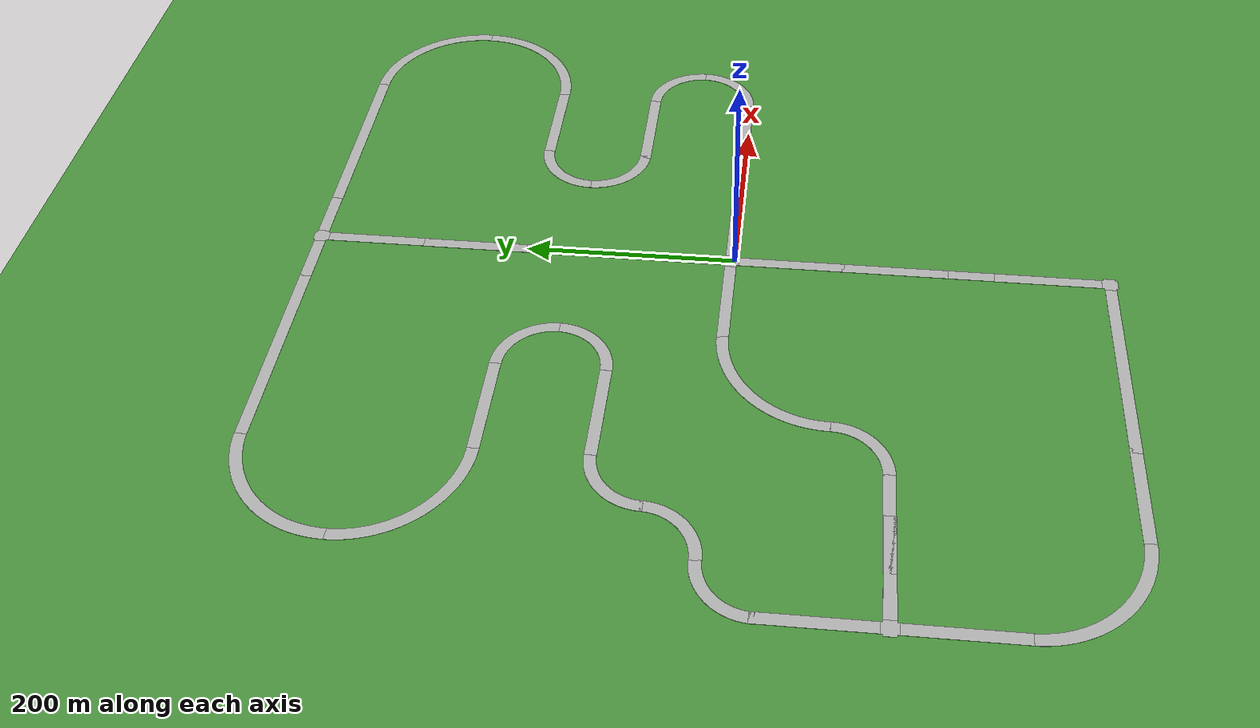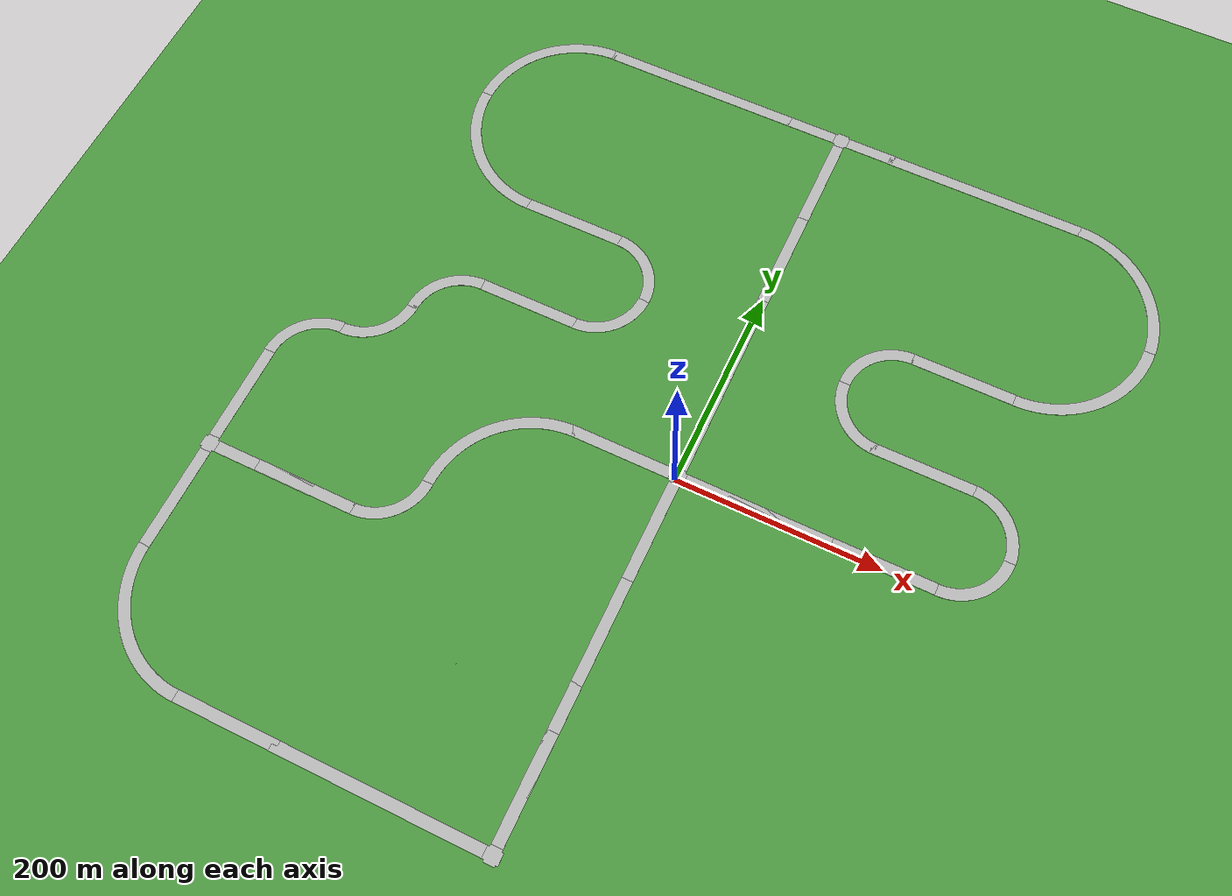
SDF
<sdf version="1.6">
 <world name="default">
  <light name="sun" type="directional">
   <pose>0 0 10 0 -0 0</pose>
   <diffuse>0.8 0.8 0.8 1</diffuse>
   <specular>0.2 0.2 0.2 1</specular>
   <attenuation>
    <range>1000</range>
    <constant>0.9</constant>
    <linear>0.01</linear>
    <quadratic>0.001</quadratic>
   </attenuation>
   <direction>-0.5 0.1 -0.9</direction>
  </light>
  <model name="ground_plane">
   <static>1</static>
   <link name="link">
    <collision name="collision">
     <geometry><plane><normal>0 0 1</normal><size>100 100</size></plane></geometry>
     <surface><friction><ode><mu>100</mu><mu2>50</mu2></ode></friction></surface>
    </collision>
    <visual name="visual">
     <cast_shadows>0</cast_shadows>
     <geometry><plane><normal>0 0 1</normal><size>10000 10000</size></plane></geometry>
     <material>
      <script>
       <uri>model://ds_grass_background/materials/scripts</uri>
       <uri>model://ds_grass_background/materials/textures</uri>
       <name>GrassBackground</name>
      </script>
     </material>
    </visual>
   </link>
  </model>
  <gravity>0 0 -9.8</gravity>
  <magnetic_field>6e-06 2.3e-05 -4.2e-05</magnetic_field>
  <atmosphere type="adiabatic"/>
  <physics name="default_physics" default="0" type="ode">
   <max_step_size>0.001</max_step_size>
   <real_time_factor>1</real_time_factor>
   <real_time_update_rate>1000</real_time_update_rate>
  </physics>
  <scene>
   <ambient>0.4 0.4 0.4 1</ambient>
   <background>0.7 0.7 0.7 1</background>
   <shadows>1</shadows>
   <grid>0</grid>
  </scene>
  <spherical_coordinates>
   <surface_model>EARTH_WGS84</surface_model>
   <latitude_deg>0</latitude_deg>
   <longitude_deg>0</longitude_deg>
   <elevation>0</elevation>
   <heading_deg>0</heading_deg>
  </spherical_coordinates>
  <model name="(DS) Straight Road - 100m_0">
   <static>1</static>
   <link name="link">
    <inertial>
     <mass>1</mass>
     <inertia><ixx>1</ixx><iyy>1</iyy><izz>1</izz><ixy>0</ixy><ixz>0</ixz><iyz>0</iyz></inertia>
    </inertial>
    <collision name="collision">
     <geometry><mesh><uri>model://ds_straight_road_100m/meshes/straight_road_100m.dae</uri></mesh></geometry>
    </collision>
    <visual name="visual">
     <geometry><mesh><uri>model://ds_straight_road_100m/meshes/straight_road_100m.dae</uri></mesh></geometry>
    </visual>
   </link>
   <pose>58.0314 14.1946 0 0 -0 0</pose>
  </model>
  <model name="(DS) Curved Road - 50m_7">
   <static>1</static>
   <link name="link">
    <inertial>
     <mass>1</mass>
     <inertia><ixx>1</ixx><iyy>1</iyy><izz>1</izz><ixy>0</ixy><ixz>0</ixz><iyz>0</iyz></inertia>
    </inertial>
    <collision name="collision">
     <geometry><mesh><uri>model://ds_curved_road_50m/meshes/curved_road_50m.dae</uri></mesh></geometry>
    </collision>
    <visual name="visual">
     <geometry><mesh><uri>model://ds_curved_road_50m/meshes/curved_road_50m.dae</uri></mesh></geometry>
    </visual>
   </link>
   <pose>276.235 81.4244 0 0 -0 1.5707</pose>
  </model>
  <model name="(DS) Curved Road - 50m_8">
   <static>1</static>
   <link name="link">
    <inertial>
     <mass>1</mass>
     <inertia><ixx>1</ixx><iyy>1</iyy><izz>1</izz><ixy>0</ixy><ixz>0</ixz><iyz>0</iyz></inertia>
    </inertial>
    <collision name="collision">
     <geometry><mesh><uri>model://ds_curved_road_50m/meshes/curved_road_50m.dae</uri></mesh></geometry>
    </collision>
    <visual name="visual">
     <geometry><mesh><uri>model://ds_curved_road_50m/meshes/curved_road_50m.dae</uri></mesh></geometry>
    </visual>
   </link>
   <pose>125.492 181.167 0 0 -0 3.14159</pose>
  </model>
  <model name="(DS) Curved Road - 50m_9">
   <static>1</static>
   <link name="link">
    <inertial>
     <mass>1</mass>
     <inertia><ixx>1</ixx><iyy>1</iyy><izz>1</izz><ixy>0</ixy><ixz>0</ixz><iyz>0</iyz></inertia>
    </inertial>
    <collision name="collision">
     <geometry><mesh><uri>model://ds_curved_road_50m/meshes/curved_road_50m.dae</uri></mesh></geometry>
    </collision>
    <visual name="visual">
     <geometry><mesh><uri>model://ds_curved_road_50m/meshes/curved_road_50m.dae</uri></mesh></geometry>
    </visual>
   </link>
   <pose>125.478 125.833 0 0 0 -1.5707</pose>
  </model>
  <model name="(DS) Straight Road - 100m_6">
   <static>1</static>
   <link name="link">
    <inertial>
     <mass>1</mass>
     <inertia><ixx>1</ixx><iyy>1</iyy><izz>1</izz><ixy>0</ixy><ixz>0</ixz><iyz>0</iyz></inertia>
    </inertial>
    <collision name="collision">
     <geometry><mesh><uri>model://ds_straight_road_100m/meshes/straight_road_100m.dae</uri></mesh></geometry>
    </collision>
    <visual name="visual">
     <geometry><mesh><uri>model://ds_straight_road_100m/meshes/straight_road_100m.dae</uri></mesh></geometry>
    </visual>
   </link>
   <pose>202.159 213.384 0 0 -0 0</pose>
  </model>
  <model name="(DS) Curved Road - 100m_8">
   <static>1</static>
   <link name="link">
    <inertial>
     <mass>1</mass>
     <inertia><ixx>1</ixx><iyy>1</iyy><izz>1</izz><ixy>0</ixy><ixz>0</ixz><iyz>0</iyz></inertia>
    </inertial>
    <collision name="collision">
     <geometry><mesh><uri>model://ds_curved_road_100m/meshes/curved_road_100m.dae</uri></mesh></geometry>
    </collision>
    <visual name="visual">
     <geometry><mesh><uri>model://ds_curved_road_100m/meshes/curved_road_100m.dae</uri></mesh></geometry>
    </visual>
   </link>
   <pose>304.777 250.431 0 0 -0 0</pose>
  </model>
  <model name="(DS) Curved Road - 100m_9">
   <static>1</static>
   <link name="link">
    <inertial>
     <mass>1</mass>
     <inertia><ixx>1</ixx><iyy>1</iyy><izz>1</izz><ixy>0</ixy><ixz>0</ixz><iyz>0</iyz></inertia>
    </inertial>
    <collision name="collision">
     <geometry><mesh><uri>model://ds_curved_road_100m/meshes/curved_road_100m.dae</uri></mesh></geometry>
    </collision>
    <visual name="visual">
     <geometry><mesh><uri>model://ds_curved_road_100m/meshes/curved_road_100m.dae</uri></mesh></geometry>
    </visual>
   </link>
   <pose>-305.357 249.91 0 0 0 -1.5707</pose>
  </model>
  <model name="(DS) Curved Road - 100m_10">
   <static>1</static>
   <link name="link">
    <inertial>
     <mass>1</mass>
     <inertia><ixx>1</ixx><iyy>1</iyy><izz>1</izz><ixy>0</ixy><ixz>0</ixz><iyz>0</iyz></inertia>
    </inertial>
    <collision name="collision">
     <geometry><mesh><uri>model://ds_curved_road_100m/meshes/curved_road_100m.dae</uri></mesh></geometry>
    </collision>
    <visual name="visual">
     <geometry><mesh><uri>model://ds_curved_road_100m/meshes/curved_road_100m.dae</uri></mesh></geometry>
    </visual>
   </link>
   <pose>-305.28 355.112 0 0 -0 3.14159</pose>
  </model>
  <model name="(DS) Curved Road - 100m_11">
   <static>1</static>
   <link name="link">
    <inertial>
     <mass>1</mass>
     <inertia><ixx>1</ixx><iyy>1</iyy><izz>1</izz><ixy>0</ixy><ixz>0</ixz><iyz>0</iyz></inertia>
    </inertial>
    <collision name="collision">
     <geometry><mesh><uri>model://ds_curved_road_100m/meshes/curved_road_100m.dae</uri></mesh></geometry>
    </collision>
    <visual name="visual">
     <geometry><mesh><uri>model://ds_curved_road_100m/meshes/curved_road_100m.dae</uri></mesh></geometry>
    </visual>
   </link>
   <pose>304.951 354.734 0 0 -0 1.5707</pose>
  </model>
  <model name="(DS) Straight Road - 200m_9">
   <static>1</static>
   <link name="link">
    <inertial>
     <mass>1</mass>
     <inertia><ixx>1</ixx><iyy>1</iyy><izz>1</izz><ixy>0</ixy><ixz>0</ixz><iyz>0</iyz></inertia>
    </inertial>
    <collision name="collision">
     <geometry><mesh><uri>model://ds_straight_road_200m/meshes/straight_road_200m.dae</uri></mesh></geometry>
    </collision>
    <visual name="visual">
     <geometry><mesh><uri>model://ds_straight_road_200m/meshes/straight_road_200m.dae</uri></mesh></geometry>
    </visual>
   </link>
   <pose>-155.124 412.117 0 0 -0 0</pose>
  </model>
  <model name="(DS) Straight Road - 200m_11">
   <static>1</static>
   <link name="link">
    <inertial>
     <mass>1</mass>
     <inertia><ixx>1</ixx><iyy>1</iyy><izz>1</izz><ixy>0</ixy><ixz>0</ixz><iyz>0</iyz></inertia>
    </inertial>
    <collision name="collision">
     <geometry><mesh><uri>model://ds_straight_road_200m/meshes/straight_road_200m.dae</uri></mesh></geometry>
    </collision>
    <visual name="visual">
     <geometry><mesh><uri>model://ds_straight_road_200m/meshes/straight_road_200m.dae</uri></mesh></geometry>
    </visual>
   </link>
   <pose>152.988 411.982 0 0 -0 0</pose>
  </model>
  <model name="(DS) Curved Road - 50m_11">
   <static>1</static>
   <link name="link">
    <inertial>
     <mass>1</mass>
     <inertia><ixx>1</ixx><iyy>1</iyy><izz>1</izz><ixy>0</ixy><ixz>0</ixz><iyz>0</iyz></inertia>
    </inertial>
    <collision name="collision">
     <geometry><mesh><uri>model://ds_curved_road_50m/meshes/curved_road_50m.dae</uri></mesh></geometry>
    </collision>
    <visual name="visual">
     <geometry><mesh><uri>model://ds_curved_road_50m/meshes/curved_road_50m.dae</uri></mesh></geometry>
    </visual>
   </link>
   <pose>-279.085 81.2955 0 0 -0 3.14159</pose>
  </model>
  <model name="(DS) Curved Road - 50m_13">
   <static>1</static>
   <link name="link">
    <inertial>
     <mass>1</mass>
     <inertia><ixx>1</ixx><iyy>1</iyy><izz>1</izz><ixy>0</ixy><ixz>0</ixz><iyz>0</iyz></inertia>
    </inertial>
    <collision name="collision">
     <geometry><mesh><uri>model://ds_curved_road_50m/meshes/curved_road_50m.dae</uri></mesh></geometry>
    </collision>
    <visual name="visual">
     <geometry><mesh><uri>model://ds_curved_road_50m/meshes/curved_road_50m.dae</uri></mesh></geometry>
    </visual>
   </link>
   <pose>-125.502 180.422 0 0 -0 1.5707</pose>
  </model>
  <model name="(DS) Straight Road - 100m_7">
   <static>1</static>
   <link name="link">
    <inertial>
     <mass>1</mass>
     <inertia><ixx>1</ixx><iyy>1</iyy><izz>1</izz><ixy>0</ixy><ixz>0</ixz><iyz>0</iyz></inertia>
    </inertial>
    <collision name="collision">
     <geometry><mesh><uri>model://ds_straight_road_100m/meshes/straight_road_100m.dae</uri></mesh></geometry>
    </collision>
    <visual name="visual">
     <geometry><mesh><uri>model://ds_straight_road_100m/meshes/straight_road_100m.dae</uri></mesh></geometry>
    </visual>
   </link>
   <pose>10.5041 61.7129 0 0 0 -1.5707</pose>
  </model>
  <model name="(DS) Straight Road - 100m_8">
   <static>1</static>
   <link name="link">
    <inertial>
     <mass>1</mass>
     <inertia><ixx>1</ixx><iyy>1</iyy><izz>1</izz><ixy>0</ixy><ixz>0</ixz><iyz>0</iyz></inertia>
    </inertial>
    <collision name="collision">
     <geometry><mesh><uri>model://ds_straight_road_100m/meshes/straight_road_100m.dae</uri></mesh></geometry>
    </collision>
    <visual name="visual">
     <geometry><mesh><uri>model://ds_straight_road_100m/meshes/straight_road_100m.dae</uri></mesh></geometry>
    </visual>
   </link>
   <pose>-9.38372 344.699 0 0 -0 1.5707</pose>
  </model>
  <model name="(DS) Intersection">
   <static>1</static>
   <link name="link">
    <inertial>
     <mass>1</mass>
     <inertia><ixx>1</ixx><iyy>1</iyy><izz>1</izz><ixy>0</ixy><ixz>0</ixz><iyz>0</iyz></inertia>
    </inertial>
    <collision name="collision">
     <geometry><mesh><uri>model://ds_intersection/meshes/intersection.dae</uri></mesh></geometry>
    </collision>
    <visual name="visual">
     <geometry><mesh><uri>model://ds_intersection/meshes/intersection.dae</uri></mesh></geometry>
    </visual>
   </link>
   <pose>0.482088 4.27016 0 0 -0 0</pose>
  </model>
  <model name="(DS) Straight Road - 100m_8_clone">
   <static>1</static>
   <link name="link">
    <inertial>
     <mass>1</mass>
     <inertia><ixx>1</ixx><iyy>1</iyy><izz>1</izz><ixy>0</ixy><ixz>0</ixz><iyz>0</iyz></inertia>
    </inertial>
    <collision name="collision">
     <geometry><mesh><uri>model://ds_straight_road_100m/meshes/straight_road_100m.dae</uri></mesh></geometry>
    </collision>
    <visual name="visual">
     <geometry><mesh><uri>model://ds_straight_road_100m/meshes/straight_road_100m.dae</uri></mesh></geometry>
    </visual>
   </link>
   <pose>-9.59484 151.108 0 0 -0 1.5707</pose>
  </model>
  <model name="(DS) Straight Road - 100m_8_clone_0">
   <static>1</static>
   <link name="link">
    <inertial>
     <mass>1</mass>
     <inertia><ixx>1</ixx><iyy>1</iyy><izz>1</izz><ixy>0</ixy><ixz>0</ixz><iyz>0</iyz></inertia>
    </inertial>
    <collision name="collision">
     <geometry><mesh><uri>model://ds_straight_road_100m/meshes/straight_road_100m.dae</uri></mesh></geometry>
    </collision>
    <visual name="visual">
     <geometry><mesh><uri>model://ds_straight_road_100m/meshes/straight_road_100m.dae</uri></mesh></geometry>
    </visual>
   </link>
   <pose>-9.52543 251.131 0 0 -0 1.5707</pose>
  </model>
  <model name="(DS) Straight Road - 100m_0_clone">
   <static>1</static>
   <link name="link">
    <inertial>
     <mass>1</mass>
     <inertia><ixx>1</ixx><iyy>1</iyy><izz>1</izz><ixy>0</ixy><ixz>0</ixz><iyz>0</iyz></inertia>
    </inertial>
    <collision name="collision">
     <geometry><mesh><uri>model://ds_straight_road_100m/meshes/straight_road_100m.dae</uri></mesh></geometry>
    </collision>
    <visual name="visual">
     <geometry><mesh><uri>model://ds_straight_road_100m/meshes/straight_road_100m.dae</uri></mesh></geometry>
    </visual>
   </link>
   <pose>99.8887 14.172 0 0 -0 0</pose>
  </model>
  <model name="(DS) Straight Road - 100m_0_clone_0">
   <static>1</static>
   <link name="link">
    <inertial>
     <mass>1</mass>
     <inertia><ixx>1</ixx><iyy>1</iyy><izz>1</izz><ixy>0</ixy><ixz>0</ixz><iyz>0</iyz></inertia>
    </inertial>
    <collision name="collision">
     <geometry><mesh><uri>model://ds_straight_road_100m/meshes/straight_road_100m.dae</uri></mesh></geometry>
    </collision>
    <visual name="visual">
     <geometry><mesh><uri>model://ds_straight_road_100m/meshes/straight_road_100m.dae</uri></mesh></geometry>
    </visual>
   </link>
   <pose>198.926 14.1979 0 0 -0 0</pose>
  </model>
  <model name="frc2016_moat">
   <static>1</static>
   <link name="link">
    <inertial>
     <mass>10</mass>
     <pose>0 0 0.06738 0 -0 0</pose>
     <inertia><ixx>0.312195</ixx><ixy>0</ixy><ixz>0</ixz><iyy>1.35927</iyy><iyz>0</iyz><izz>1.64109</izz></inertia>
    </inertial>
    <visual name="platform">
     <pose>0 0 0.0381 0 -0 0</pose>
     <geometry><box><size>1.27 0.5969 0.0762</size></box></geometry>
    </visual>
    <collision name="platform">
     <pose>0 0 0.0381 0 -0 0</pose>
     <geometry><box><size>1.27 0.5969 0.0762</size></box></geometry>
    </collision>
    <visual name="tube1_side1">
     <pose>0 -0.25876 0.10301 0 -0 0</pose>
     <geometry><box><size>1.27 0.003175 0.0635</size></box></geometry>
     <material><ambient>0.46 0.46 0.46 1</ambient><diffuse>0.46 0.46 0.46 1</diffuse></material>
    </visual>
    <collision name="tube1_side1">
     <pose>0 -0.25876 0.10301 0 -0 0</pose>
     <geometry><box><size>1.27 0.003175 0.0635</size></box></geometry>
    </collision>
    <visual name="tube1_side2">
     <pose>0 -0.22384 0.10301 0 -0 0</pose>
     <geometry><box><size>1.27 0.003175 0.0635</size></box></geometry>
     <material><ambient>0.46 0.46 0.46 1</ambient><diffuse>0.46 0.46 0.46 1</diffuse></material>
    </visual>
    <collision name="tube1_side2">
     <pose>0 -0.22384 0.10301 0 -0 0</pose>
     <geometry><box><size>1.27 0.003175 0.0635</size></box></geometry>
    </collision>
    <visual name="tube1_top">
     <pose>0 -0.2413 0.13317 0 -0 0</pose>
     <geometry><box><size>1.27 0.0381 0.003175</size></box></geometry>
     <material><ambient>0.46 0.46 0.46 1</ambient><diffuse>0.46 0.46 0.46 1</diffuse></material>
    </visual>
    <collision name="tube1_top">
     <pose>0 -0.2413 0.13317 0 -0 0</pose>
     <geometry><box><size>1.27 0.0381 0.003175</size></box></geometry>
    </collision>
    <visual name="tube2_side1">
     <pose>0 0.22384 0.10301 0 -0 0</pose>
     <geometry><box><size>1.27 0.003175 0.0635</size></box></geometry>
     <material><ambient>0.46 0.46 0.46 1</ambient><diffuse>0.46 0.46 0.46 1</diffuse></material>
    </visual>
    <collision name="tube2_side1">
     <pose>0 0.22384 0.10301 0 -0 0</pose>
     <geometry><box><size>1.27 0.003175 0.0635</size></box></geometry>
    </collision>
    <visual name="tube2_side2">
     <pose>0 0.25876 0.10301 0 -0 0</pose>
     <geometry><box><size>1.27 0.003175 0.0635</size></box></geometry>
     <material><ambient>0.46 0.46 0.46 1</ambient><diffuse>0.46 0.46 0.46 1</diffuse></material>
    </visual>
    <collision name="tube2_side2">
     <pose>0 0.25876 0.10301 0 -0 0</pose>
     <geometry><box><size>1.27 0.003175 0.0635</size></box></geometry>
    </collision>
    <visual name="tube2_top">
     <pose>0 0.2413 0.13317 0 -0 0</pose>
     <geometry><box><size>1.27 0.0381 0.003175</size></box></geometry>
     <material><ambient>0.46 0.46 0.46 1</ambient><diffuse>0.46 0.46 0.46 1</diffuse></material>
    </visual>
    <collision name="tube2_top">
     <pose>0 0.2413 0.13317 0 -0 0</pose>
     <geometry><box><size>1.27 0.0381 0.003175</size></box></geometry>
    </collision>
   </link>
   <pose>-99.9777 -228.74 0 0 -0 0</pose>
  </model>
  <model name="(DS) Intersection_0">
   <static>1</static>
   <link name="link">
    <inertial>
     <mass>1</mass>
     <inertia><ixx>1</ixx><iyy>1</iyy><izz>1</izz><ixy>0</ixy><ixz>0</ixz><iyz>0</iyz></inertia>
    </inertial>
    <collision name="collision">
     <geometry><mesh><uri>model://ds_intersection/meshes/intersection.dae</uri></mesh></geometry>
    </collision>
    <visual name="visual">
     <geometry><mesh><uri>model://ds_intersection/meshes/intersection.dae</uri></mesh></geometry>
    </visual>
   </link>
   <pose>0.642957 402.162 0 0 -0 0</pose>
  </model>
  <model name="(DS) Straight Road - 50m_0">
   <static>1</static>
   <link name="link">
    <inertial>
     <mass>1</mass>
     <inertia><ixx>1</ixx><iyy>1</iyy><izz>1</izz><ixy>0</ixy><ixz>0</ixz><iyz>0</iyz></inertia>
    </inertial>
    <collision name="collision">
     <geometry><mesh><uri>model://ds_straight_road_50m/meshes/straight_road_50m.dae</uri></mesh></geometry>
    </collision>
    <visual name="visual">
     <geometry><mesh><uri>model://ds_straight_road_50m/meshes/straight_road_50m.dae</uri></mesh></geometry>
    </visual>
   </link>
   <pose>-31.7209 412.145 0 0 -0 0</pose>
  </model>
  <model name="(DS) Straight Road - 50m_1">
   <static>1</static>
   <link name="link">
    <inertial>
     <mass>1</mass>
     <inertia><ixx>1</ixx><iyy>1</iyy><izz>1</izz><ixy>0</ixy><ixz>0</ixz><iyz>0</iyz></inertia>
    </inertial>
    <collision name="collision">
     <geometry><mesh><uri>model://ds_straight_road_50m/meshes/straight_road_50m.dae</uri></mesh></geometry>
    </collision>
    <visual name="visual">
     <geometry><mesh><uri>model://ds_straight_road_50m/meshes/straight_road_50m.dae</uri></mesh></geometry>
    </visual>
   </link>
   <pose>33.1042 412.253 0 0 -0 0</pose>
  </model>
  <model name="(DS) Straight Road - 100m_6_clone">
   <static>1</static>
   <link name="link">
    <inertial>
     <mass>1</mass>
     <inertia><ixx>1</ixx><iyy>1</iyy><izz>1</izz><ixy>0</ixy><ixz>0</ixz><iyz>0</iyz></inertia>
    </inertial>
    <collision name="collision">
     <geometry><mesh><uri>model://ds_straight_road_100m/meshes/straight_road_100m.dae</uri></mesh></geometry>
    </collision>
    <visual name="visual">
     <geometry><mesh><uri>model://ds_straight_road_100m/meshes/straight_road_100m.dae</uri></mesh></geometry>
    </visual>
   </link>
   <pose>198.946 113.738 0 0 -0 0</pose>
  </model>
  <model name="(DS) Curved Road - 50m">
   <static>1</static>
   <link name="link">
    <inertial>
     <mass>1</mass>
     <inertia><ixx>1</ixx><iyy>1</iyy><izz>1</izz><ixy>0</ixy><ixz>0</ixz><iyz>0</iyz></inertia>
    </inertial>
    <collision name="collision">
     <geometry><mesh><uri>model://ds_curved_road_50m/meshes/curved_road_50m.dae</uri></mesh></geometry>
    </collision>
    <visual name="visual">
     <geometry><mesh><uri>model://ds_curved_road_50m/meshes/curved_road_50m.dae</uri></mesh></geometry>
    </visual>
   </link>
   <pose>276.181 26.2605 0 0 -0 0</pose>
  </model>
  <model name="(DS) Straight Road - 100m_6_clone_0">
   <static>1</static>
   <link name="link">
    <inertial>
     <mass>1</mass>
     <inertia><ixx>1</ixx><iyy>1</iyy><izz>1</izz><ixy>0</ixy><ixz>0</ixz><iyz>0</iyz></inertia>
    </inertial>
    <collision name="collision">
     <geometry><mesh><uri>model://ds_straight_road_100m/meshes/straight_road_100m.dae</uri></mesh></geometry>
    </collision>
    <visual name="visual">
     <geometry><mesh><uri>model://ds_straight_road_100m/meshes/straight_road_100m.dae</uri></mesh></geometry>
    </visual>
   </link>
   <pose>-202.901 212.81 0 0 -0 0</pose>
  </model>
  <model name="(DS) Curved Road - 50m_clone">
   <static>1</static>
   <link name="link">
    <inertial>
     <mass>1</mass>
     <inertia><ixx>1</ixx><iyy>1</iyy><izz>1</izz><ixy>0</ixy><ixz>0</ixz><iyz>0</iyz></inertia>
    </inertial>
    <collision name="collision">
     <geometry><mesh><uri>model://ds_curved_road_50m/meshes/curved_road_50m.dae</uri></mesh></geometry>
    </collision>
    <visual name="visual">
     <geometry><mesh><uri>model://ds_curved_road_50m/meshes/curved_road_50m.dae</uri></mesh></geometry>
    </visual>
   </link>
   <pose>-125.663 125.609 0 0 -0 0</pose>
  </model>
  <model name="(DS) Curved Road - 50m_clone_0">
   <static>1</static>
   <link name="link">
    <inertial>
     <mass>1</mass>
     <inertia><ixx>1</ixx><iyy>1</iyy><izz>1</izz><ixy>0</ixy><ixz>0</ixz><iyz>0</iyz></inertia>
    </inertial>
    <collision name="collision">
     <geometry><mesh><uri>model://ds_curved_road_50m/meshes/curved_road_50m.dae</uri></mesh></geometry>
    </collision>
    <visual name="visual">
     <geometry><mesh><uri>model://ds_curved_road_50m/meshes/curved_road_50m.dae</uri></mesh></geometry>
    </visual>
   </link>
   <pose>-323.509 28.4148 0 0 -0 0</pose>
  </model>
  <model name="(DS) Straight Road - 100m_0_clone_2">
   <static>1</static>
   <link name="link">
    <inertial>
     <mass>1</mass>
     <inertia><ixx>1</ixx><iyy>1</iyy><izz>1</izz><ixy>0</ixy><ixz>0</ixz><iyz>0</iyz></inertia>
    </inertial>
    <collision name="collision">
     <geometry><mesh><uri>model://ds_straight_road_100m/meshes/straight_road_100m.dae</uri></mesh></geometry>
    </collision>
    <visual name="visual">
     <geometry><mesh><uri>model://ds_straight_road_100m/meshes/straight_road_100m.dae</uri></mesh></geometry>
    </visual>
   </link>
   <pose>-57.0176 14.2031 0 0 -0 0</pose>
  </model>
  <model name="(DS) Straight Road - 100m_0_clone_3">
   <static>1</static>
   <link name="link">
    <inertial>
     <mass>1</mass>
     <inertia><ixx>1</ixx><iyy>1</iyy><izz>1</izz><ixy>0</ixy><ixz>0</ixz><iyz>0</iyz></inertia>
    </inertial>
    <collision name="collision">
     <geometry><mesh><uri>model://ds_straight_road_100m/meshes/straight_road_100m.dae</uri></mesh></geometry>
    </collision>
    <visual name="visual">
     <geometry><mesh><uri>model://ds_straight_road_100m/meshes/straight_road_100m.dae</uri></mesh></geometry>
    </visual>
   </link>
   <pose>-202.793 113.455 0 0 -0 0</pose>
  </model>
  <model name="(DS) Straight Road - 100m_0_clone_2_clone">
   <static>1</static>
   <link name="link">
    <inertial>
     <mass>1</mass>
     <inertia><ixx>1</ixx><iyy>1</iyy><izz>1</izz><ixy>0</ixy><ixz>0</ixz><iyz>0</iyz></inertia>
    </inertial>
    <collision name="collision">
     <geometry><mesh><uri>model://ds_straight_road_100m/meshes/straight_road_100m.dae</uri></mesh></geometry>
    </collision>
    <visual name="visual">
     <geometry><mesh><uri>model://ds_straight_road_100m/meshes/straight_road_100m.dae</uri></mesh></geometry>
    </visual>
   </link>
   <pose>-251.841 -341.79 0 0 -0 0</pose>
  </model>
  <model name="(DS) Straight Road - 100m_0_clone_2_clone_0">
   <static>1</static>
   <link name="link">
    <inertial>
     <mass>1</mass>
     <inertia><ixx>1</ixx><iyy>1</iyy><izz>1</izz><ixy>0</ixy><ixz>0</ixz><iyz>0</iyz></inertia>
    </inertial>
    <collision name="collision">
     <geometry><mesh><uri>model://ds_straight_road_100m/meshes/straight_road_100m.dae</uri></mesh></geometry>
    </collision>
    <visual name="visual">
     <geometry><mesh><uri>model://ds_straight_road_100m/meshes/straight_road_100m.dae</uri></mesh></geometry>
    </visual>
   </link>
   <pose>-299.907 -135.809 0 0 -0 0</pose>
  </model>
  <model name="(DS) Straight Road - 100m_7_clone">
   <static>1</static>
   <link name="link">
    <inertial>
     <mass>1</mass>
     <inertia><ixx>1</ixx><iyy>1</iyy><izz>1</izz><ixy>0</ixy><ixz>0</ixz><iyz>0</iyz></inertia>
    </inertial>
    <collision name="collision">
     <geometry><mesh><uri>model://ds_straight_road_100m/meshes/straight_road_100m.dae</uri></mesh></geometry>
    </collision>
    <visual name="visual">
     <geometry><mesh><uri>model://ds_straight_road_100m/meshes/straight_road_100m.dae</uri></mesh></geometry>
    </visual>
   </link>
   <pose>10.4666 -53.1275 0 0 0 -1.5707</pose>
  </model>
  <model name="(DS) Straight Road - 100m_7_clone_0">
   <static>1</static>
   <link name="link">
    <inertial>
     <mass>1</mass>
     <inertia><ixx>1</ixx><iyy>1</iyy><izz>1</izz><ixy>0</ixy><ixz>0</ixz><iyz>0</iyz></inertia>
    </inertial>
    <collision name="collision">
     <geometry><mesh><uri>model://ds_straight_road_100m/meshes/straight_road_100m.dae</uri></mesh></geometry>
    </collision>
    <visual name="visual">
     <geometry><mesh><uri>model://ds_straight_road_100m/meshes/straight_road_100m.dae</uri></mesh></geometry>
    </visual>
   </link>
   <pose>10.4526 -151.223 0 0 0 -1.5707</pose>
  </model>
  <model name="(DS) Straight Road - 100m_7_clone_1">
   <static>1</static>
   <link name="link">
    <inertial>
     <mass>1</mass>
     <inertia><ixx>1</ixx><iyy>1</iyy><izz>1</izz><ixy>0</ixy><ixz>0</ixz><iyz>0</iyz></inertia>
    </inertial>
    <collision name="collision">
     <geometry><mesh><uri>model://ds_straight_road_100m/meshes/straight_road_100m.dae</uri></mesh></geometry>
    </collision>
    <visual name="visual">
     <geometry><mesh><uri>model://ds_straight_road_100m/meshes/straight_road_100m.dae</uri></mesh></geometry>
    </visual>
   </link>
   <pose>10.4452 -250.483 0 0 0 -1.5707</pose>
  </model>
  <model name="(DS) Intersection_clone">
   <static>1</static>
   <link name="link">
    <inertial>
     <mass>1</mass>
     <inertia><ixx>1</ixx><iyy>1</iyy><izz>1</izz><ixy>0</ixy><ixz>0</ixz><iyz>0</iyz></inertia>
    </inertial>
    <collision name="collision">
     <geometry><mesh><uri>model://ds_intersection/meshes/intersection.dae</uri></mesh></geometry>
    </collision>
    <visual name="visual">
     <geometry><mesh><uri>model://ds_intersection/meshes/intersection.dae</uri></mesh></geometry>
    </visual>
   </link>
   <pose>0.377178 -351.865 0 0 -0 0</pose>
  </model>
  <model name="(DS) Straight Road - 200m_9_clone">
   <static>1</static>
   <link name="link">
    <inertial>
     <mass>1</mass>
     <inertia><ixx>1</ixx><iyy>1</iyy><izz>1</izz><ixy>0</ixy><ixz>0</ixz><iyz>0</iyz></inertia>
    </inertial>
    <collision name="collision">
     <geometry><mesh><uri>model://ds_straight_road_200m/meshes/straight_road_200m.dae</uri></mesh></geometry>
    </collision>
    <visual name="visual">
     <geometry><mesh><uri>model://ds_straight_road_200m/meshes/straight_road_200m.dae</uri></mesh></geometry>
    </visual>
   </link>
   <pose>-107.148 -341.901 0 0 -0 0</pose>
  </model>
  <model name="(DS) Curved Road - 100m_9_clone">
   <static>1</static>
   <link name="link">
    <inertial>
     <mass>1</mass>
     <inertia><ixx>1</ixx><iyy>1</iyy><izz>1</izz><ixy>0</ixy><ixz>0</ixz><iyz>0</iyz></inertia>
    </inertial>
    <collision name="collision">
     <geometry><mesh><uri>model://ds_curved_road_100m/meshes/curved_road_100m.dae</uri></mesh></geometry>
    </collision>
    <visual name="visual">
     <geometry><mesh><uri>model://ds_curved_road_100m/meshes/curved_road_100m.dae</uri></mesh></geometry>
    </visual>
   </link>
   <pose>-353.123 -304.663 0 0 0 -1.5707</pose>
  </model>
  <model name="(DS) Intersection_clone_0">
   <static>1</static>
   <link name="link">
    <inertial>
     <mass>1</mass>
     <inertia><ixx>1</ixx><iyy>1</iyy><izz>1</izz><ixy>0</ixy><ixz>0</ixz><iyz>0</iyz></inertia>
    </inertial>
    <collision name="collision">
     <geometry><mesh><uri>model://ds_intersection/meshes/intersection.dae</uri></mesh></geometry>
    </collision>
    <visual name="visual">
     <geometry><mesh><uri>model://ds_intersection/meshes/intersection.dae</uri></mesh></geometry>
    </visual>
   </link>
   <pose>-400.286 -146.176 0 0 -0 0</pose>
  </model>
  <model name="(DS) Curved Road - 50m_11_clone">
   <static>1</static>
   <link name="link">
    <inertial>
     <mass>1</mass>
     <inertia><ixx>1</ixx><iyy>1</iyy><izz>1</izz><ixy>0</ixy><ixz>0</ixz><iyz>0</iyz></inertia>
    </inertial>
    <collision name="collision">
     <geometry><mesh><uri>model://ds_curved_road_50m/meshes/curved_road_50m.dae</uri></mesh></geometry>
    </collision>
    <visual name="visual">
     <geometry><mesh><uri>model://ds_curved_road_50m/meshes/curved_road_50m.dae</uri></mesh></geometry>
    </visual>
   </link>
   <pose>-378.368 -15.7106 0 0 -0 3.14159</pose>
  </model>
  <model name="(DS) Straight Road - 100m_7_clone_clone">
   <static>1</static>
   <link name="link">
    <inertial>
     <mass>1</mass>
     <inertia><ixx>1</ixx><iyy>1</iyy><izz>1</izz><ixy>0</ixy><ixz>0</ixz><iyz>0</iyz></inertia>
    </inertial>
    <collision name="collision">
     <geometry><mesh><uri>model://ds_straight_road_100m/meshes/straight_road_100m.dae</uri></mesh></geometry>
    </collision>
    <visual name="visual">
     <geometry><mesh><uri>model://ds_straight_road_100m/meshes/straight_road_100m.dae</uri></mesh></geometry>
    </visual>
   </link>
   <pose>-390.296 -88.6738 0 0 0 -1.5707</pose>
  </model>
  <model name="(DS) Straight Road - 100m_7_clone_clone_0">
   <static>1</static>
   <link name="link">
    <inertial>
     <mass>1</mass>
     <inertia><ixx>1</ixx><iyy>1</iyy><izz>1</izz><ixy>0</ixy><ixz>0</ixz><iyz>0</iyz></inertia>
    </inertial>
    <collision name="collision">
     <geometry><mesh><uri>model://ds_straight_road_100m/meshes/straight_road_100m.dae</uri></mesh></geometry>
    </collision>
    <visual name="visual">
     <geometry><mesh><uri>model://ds_straight_road_100m/meshes/straight_road_100m.dae</uri></mesh></geometry>
    </visual>
   </link>
   <pose>-390.256 -203.636 0 0 0 -1.5707</pose>
  </model>
  <model name="(DS) Straight Road - 100m_0_clone_2_clone_clone">
   <static>1</static>
   <link name="link">
    <inertial>
     <mass>1</mass>
     <inertia><ixx>1</ixx><iyy>1</iyy><izz>1</izz><ixy>0</ixy><ixz>0</ixz><iyz>0</iyz></inertia>
    </inertial>
    <collision name="collision">
     <geometry><mesh><uri>model://ds_straight_road_100m/meshes/straight_road_100m.dae</uri></mesh></geometry>
    </collision>
    <visual name="visual">
     <geometry><mesh><uri>model://ds_straight_road_100m/meshes/straight_road_100m.dae</uri></mesh></geometry>
    </visual>
   </link>
   <pose>-342.802 -136.146 0 0 -0 0</pose>
  </model>
  <model name="(DS) Curved Road - 100m_10_clone_0">
   <static>1</static>
   <link name="link">
    <inertial>
     <mass>1</mass>
     <inertia><ixx>1</ixx><iyy>1</iyy><izz>1</izz><ixy>0</ixy><ixz>0</ixz><iyz>0</iyz></inertia>
    </inertial>
    <collision name="collision">
     <geometry><mesh><uri>model://ds_curved_road_100m/meshes/curved_road_100m.dae</uri></mesh></geometry>
    </collision>
    <visual name="visual">
     <geometry><mesh><uri>model://ds_curved_road_100m/meshes/curved_road_100m.dae</uri></mesh></geometry>
    </visual>
   </link>
   <pose>-154.12 -42.9669 0 0 -0 3.14159</pose>
  </model>
  <model name="(DS) Curved Road - 50m_clone_0_clone">
   <static>1</static>
   <link name="link">
    <inertial>
     <mass>1</mass>
     <inertia><ixx>1</ixx><iyy>1</iyy><izz>1</izz><ixy>0</ixy><ixz>0</ixz><iyz>0</iyz></inertia>
    </inertial>
    <collision name="collision">
     <geometry><mesh><uri>model://ds_curved_road_50m/meshes/curved_road_50m.dae</uri></mesh></geometry>
    </collision>
    <visual name="visual">
     <geometry><mesh><uri>model://ds_curved_road_50m/meshes/curved_road_50m.dae</uri></mesh></geometry>
    </visual>
   </link>
   <pose>-223.573 -123.502 0 0 -0 0</pose>
  </model>
  <model name="(DS) Straight Road - 100m_7_clone_clone_1">
   <static>1</static>
   <link name="link">
    <inertial>
     <mass>1</mass>
     <inertia><ixx>1</ixx><iyy>1</iyy><izz>1</izz><ixy>0</ixy><ixz>0</ixz><iyz>0</iyz></inertia>
    </inertial>
    <collision name="collision">
     <geometry><mesh><uri>model://ds_straight_road_100m/meshes/straight_road_100m.dae</uri></mesh></geometry>
    </collision>
    <visual name="visual">
     <geometry><mesh><uri>model://ds_straight_road_100m/meshes/straight_road_100m.dae</uri></mesh></geometry>
    </visual>
   </link>
   <pose>10.3195 -294.366 0 0 0 -1.5707</pose>
  </model>
 </world>
</sdf>
